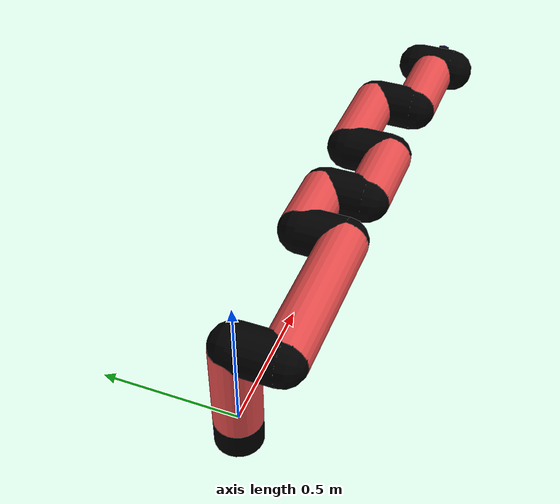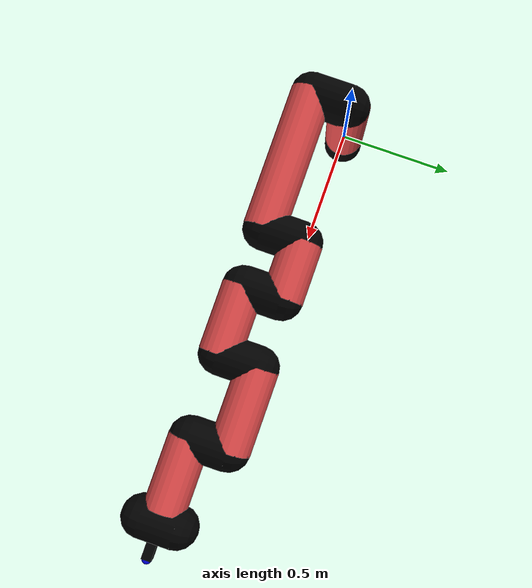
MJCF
<mujoco model="manipulator">
		<compiler angle="degree" coordinate="local" inertiafromgeom="auto" meshdir="meshes/"/>
		<option gravity="0 0 0" integrator="RK4" iterations="30" timestep="0.01"/>

		<default>
		<joint armature="1" limited="true" stiffness="10" damping="15" frictionloss="5.0"/>
		<geom conaffinity="1" condim="3" contype="1" friction=".5 .1 .1" margin="0.002"/>
		<motor ctrllimited="true"/>
		<position ctrllimited="true"/>
		</default>

		<asset>
		<texture builtin="gradient" height="100" rgb1="1.0 1.0 1.0" rgb2="1.0 1.0 1.0" type="skybox" width="100"/>
		<texture builtin="flat" height="32" name="arm_tex" rgb1="0.9 0.3 0.3" type="2d" width="32"/>
		<texture builtin="flat" height="32" name="gripper_tex" rgb1="0.0 0.0 0.0" type="cube" width="32"/>

		<material name="arm_mat" shininess="0.1" specular="0.1" texture="arm_tex"/>
		<material name="gripper_mat" shininess="1" specular="1" texture="gripper_tex"/>
		</asset>

		<worldbody>
		<light cutoff="45" diffuse=".8 .8 .8" dir="0 0.16 -1" directional="false" name="light" pos="0 -2.0 8.0" specular="0.3 0.3 0.3"/>

		<body name="base_link" pos="0 0 -0.1">
		<geom fromto="0 0 0 0 0 0.1" material="arm_mat" name="base_link" rgba="0.0 0.0 0.0 1" size="0.085" type="cylinder"/>
		</body>

		<body name="l1" pos="0 0 0">
<geom fromto="0 0 0 0 0 0.34" material="arm_mat" name="l1" rgba="0.9 0.3 0.3 1" size="0.085" type="cylinder"/>
<geom fromto="0 0 0.34 0 -0.16 0.34" material="arm_mat" name="l1_ex" rgba="0.0 0.0 0.0 1" size="0.085" type="capsule"/>
<joint axis="0 0 1" name="j1" pos="0 0 0" range="-90 90" damping="35.3" frictionloss="8.04"/>

<body name="l2" pos="0 -0.16 0.34">
<geom fromto="0 0 0 0.58 0 0" material="arm_mat" name="l2" rgba="0.9 0.3 0.3 1" size="0.085" type="cylinder"/>
<geom fromto="0.58 0 0 0.58 0.16 0" material="arm_mat" name="l2_ex" rgba="0.0 0.0 0.0 1" size="0.085" type="capsule"/>
<joint axis="0.0 1.0 0.0" name="j2" pos="0 0 0" range="-90 60" damping="34.15" frictionloss="11.6"/>

<body name="l3" pos="0.58 0.16 0">
<geom fromto="0 0 0 0.24 0 0" material="arm_mat" name="l3" rgba="0.9 0.3 0.3 1" size="0.085" type="cylinder"/>
<geom fromto="0.24 0 0 0.24 -0.16 0" material="arm_mat" name="l3_ex" rgba="0.0 0.0 0.0 1" size="0.085" type="capsule"/>
<joint axis="0.0 1.0 0.0" name="j3" pos="0 0 0" range="-30 60" damping="30.32" frictionloss="10.34"/>

<body name="l4" pos="0.24 -0.16 0">
<geom fromto="0 0 0 0.28 0 0" material="arm_mat" name="l4" rgba="0.9 0.3 0.3 1" size="0.085" type="cylinder"/>
<geom fromto="0.28 0 0 0.28 0.16 0" material="arm_mat" name="l4_ex" rgba="0.0 0.0 0.0 1" size="0.085" type="capsule"/>
<joint axis="0.0 1.0 0.0" name="j4" pos="0 0 0" range="-30 60" damping="35.96" frictionloss="11.88"/>

<body name="l5" pos="0.28 0.16 0">
<geom fromto="0 0 0 0.34 0 0" material="arm_mat" name="l5" rgba="0.9 0.3 0.3 1" size="0.085" type="cylinder"/>
<geom fromto="0.34 0 0 0.34 -0.16 0" material="arm_mat" name="l5_ex" rgba="0.0 0.0 0.0 1" size="0.085" type="capsule"/>
<joint axis="0.0 1.0 0.0" name="j5" pos="0 0 0" range="-30 60" damping="37.35" frictionloss="7.96"/>

<body name="l6" pos="0.34 -0.16 0">
<geom fromto="0 0 0 0.29 0 0" material="arm_mat" name="l6" rgba="0.9 0.3 0.3 1" size="0.085" type="cylinder"/>
<joint axis="0.0 1.0 0.0" name="j6" pos="0 0 0" range="-30 60" damping="28.83" frictionloss="10.88"/>

<body name="gripper" pos="0.29 0 0">
<geom fromto="0.05 -0.07 0 0.05 0.07 0" material="gripper_mat" name="gripper" rgba="0.0 0.0 0.0 1" size="0.085" type="capsule"/><joint axis="1 0 0" name="j7" pos="0 0 0" range="-90 90" damping="15" frictionloss="5.0"/><body name="finger" pos="0.1 0 0">
<geom fromto="0 0.0 0 0.1 0.0 0" material="gripper_mat" name="finger" rgba="0.0 0.0 0.0 1" size="0.020 0.06 0.06" type="box"/>
</body>
<site name="current" pos="0.2 0. 0.0" rgba="0. 0. 1.0 1" size="0.02" type="sphere"/>
</body>
</body>
</body>
</body>
</body>
</body>
</body>
</worldbody>
<actuator>
<motor ctrllimited="true" ctrlrange="-1.0 1.0" joint="j1" gear="80.53"/>
<motor ctrllimited="true" ctrlrange="-1.0 1.0" joint="j2" gear="77.14"/>
<motor ctrllimited="true" ctrlrange="-1.0 1.0" joint="j3" gear="90.49"/>
<motor ctrllimited="true" ctrlrange="-1.0 1.0" joint="j4" gear="89.94"/>
<motor ctrllimited="true" ctrlrange="-1.0 1.0" joint="j5" gear="73.99"/>
<motor ctrllimited="true" ctrlrange="-1.0 1.0" joint="j6" gear="77.57"/>
<motor ctrllimited="true" ctrlrange="-1.0 1.0" joint="j7" gear="80"/>
</actuator>
</mujoco>
